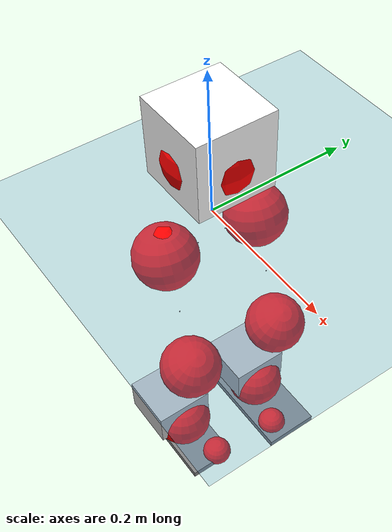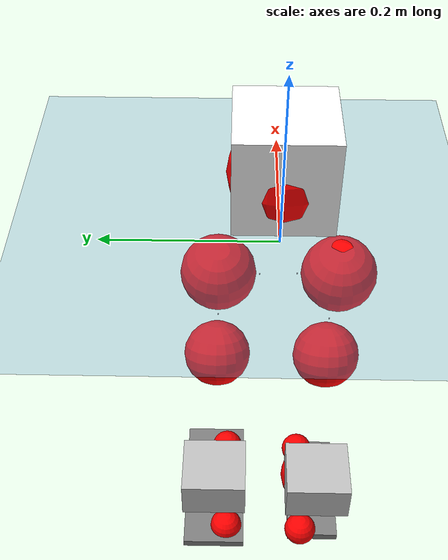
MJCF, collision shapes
<mujoco model="pi_12dof_release_v1">
  <compiler angle="radian" assetdir="assets" balanceinertia="true" inertiafromgeom="false"/>

  <option timestep="0.005" density="1.2" viscosity="2e-05"/>

  <size nkey="1"/>

  <visual>
    <quality shadowsize="8192"/>
    <map shadowclip="0.5"/>
  </visual>

  <default>
    <default class="/">
      <joint armature="0.01" damping="0.01" frictionloss="0.01"/>
      <geom contype="0" conaffinity="0" group="1" solref="-1000 -80"/>
      <site size="0.01 0.005 0.005" group="5"/>
      <general forcelimited="true" biastype="affine" gainprm="20" biasprm="0 -20 -0.5"/>
      <default class="foot">
        <geom size="0.0845 0.036 0.005" type="box" condim="6" group="4" priority="1" friction="0.9 0.2 0.2" solimp="0.015 1 0.005"/>
      </default>
      <default class="reward_collision_sphere">
        <geom group="5" rgba="1 0 0 1"/>
      </default>
    </default>
  </default>

  <asset>
    <texture type="skybox" colorspace="auto" name="//unnamed_texture_0" builtin="gradient" rgb1="0.95 0.95 0.95" rgb2="0.95 0.95 0.95" width="100" height="600"/>
    <texture type="2d" colorspace="auto" name="texplane" builtin="checker" rgb1="0.345 0.575 0.748" rgb2="0.345 0.575 0.748" markrgb="1 1 1" width="512" height="512"/>
    <material name="MatPlane" class="/" texture="texplane" texuniform="true" texrepeat="2 2" specular="0.9"/>
    <mesh name="baselink_1" class="/" file="baselink_1.STL"/>
    <mesh name="r_hip_pitch_link" class="/" file="r_hip_pitch_link.STL"/>
    <mesh name="r_hip_roll_link" class="/" file="r_hip_roll_link.STL"/>
    <mesh name="r_thigh_link" class="/" file="r_thigh_link.STL"/>
    <mesh name="r_calf_link" class="/" file="r_calf_link.STL"/>
    <mesh name="r_ankle_pitch_link" class="/" file="r_ankle_pitch_link.STL"/>
    <mesh name="r_ankle_roll_link" class="/" file="r_ankle_roll_link.STL"/>
    <mesh name="l_hip_pitch_link" class="/" file="l_hip_pitch_link.STL"/>
    <mesh name="l_hip_roll_link" class="/" file="l_hip_roll_link.STL"/>
    <mesh name="l_thigh_link" class="/" file="l_thigh_link.STL"/>
    <mesh name="l_calf_link" class="/" file="l_calf_link.STL"/>
    <mesh name="l_ankle_pitch_link" class="/" file="l_ankle_pitch_link.STL"/>
    <mesh name="l_ankle_roll_link" class="/" file="l_ankle_roll_link.STL"/>
  </asset>

  <worldbody>
    <geom name="floor" class="/" size="100 100 0.125" type="plane" group="0" material="MatPlane"/>
    <light name="toplight_shadow" class="/" pos="0 0 5" dir="0.0990148 0.0990148 -0.990148" type="directional" ambient="0.04 0.04 0.04" diffuse="0.55 0.55 0.55" specular="0.12 0.12 0.12"/>
    <light name="toplight_fill" class="/" pos="0 0 5" dir="0.0990148 0.0990148 -0.990148" type="directional" castshadow="false" ambient="0.04 0.04 0.04" diffuse="0.3 0.3 0.3" specular="0.08 0.08 0.08"/>
    <body name="trunk" pos="-0.000252188 0.000184117 -0.00191277" quat="1 -0.000166295 0.000190364 0.000415229">
      <inertial pos="0.00194891 -0.000328746 0.0551904" quat="0.695487 0.00983456 0.00857808 0.71842" mass="2.62263" diaginertia="0.0116116 0.00361443 0.0174614"/>
      <joint name="//unnamed_joint_0" type="free"/>
      <geom name="//unnamed_geom_1" class="/" type="mesh" density="0" rgba="1 1 1 1" mesh="baselink_1"/>
      <geom name="//unnamed_geom_2" class="/" size="0.0536535 0.0536535 0.0536535" pos="0 0 0.107081" type="box" rgba="1 1 1 1"/>
      <geom name="//unnamed_geom_3" class="reward_collision_sphere" size="0.0590189" pos="0 0 0.0936962"/>
      <site name="imu" class="/" pos="0.0128739 -0.0131723 0.0133324" size="0.0107307"/>
      <camera name="track" class="/" pos="0 -1.67943 0" quat="0.707107 0.707107 0 0" mode="trackcom"/>
      <camera name="ego_camera" class="/" pos="0.0780736 0 0.240933" quat="-0.5 -0.5 0.5 0.5"/>
      <body name="r_hip_pitch_link" pos="-0.00112611 -0.0213501 -0.0422614" quat="0.992127 0.000501596 -0.125235 -0.000958435">
        <inertial pos="0.000233482 -0.0471275 -0.00297431" quat="-0.0165912 0.704749 -0.0296881 0.708641" mass="0.432621" diaginertia="0.00012864 3.84346e-05 0.000357842"/>
        <joint name="r_hip_pitch_joint" class="/" pos="0 0 0" axis="0.0003689 -0.999986 0.00519207" stiffness="0.00525842" range="-1.75936 1.20674" armature="0.00936659" damping="0.00289518" frictionloss="0.00986135"/>
        <geom name="//unnamed_geom_4" class="/" type="mesh" density="0" rgba="0.75294 0.75294 0.75294 1" mesh="r_hip_pitch_link"/>
        <geom name="//unnamed_geom_5" class="/" size="0.000536535 0.000536535 0.000536535" type="box" rgba="0.75294 0.75294 0.75294 1"/>
        <body name="r_hip_roll_link" pos="-0.00160643 -0.0468817 0.00290947" quat="1 -9.07363e-05 0.000126538 9.64195e-05">
          <inertial pos="-0.00165908 0.00108985 -0.0840916" quat="0.703893 -0.0824483 -0.084488 0.700427" mass="0.489699" diaginertia="0.000405326 0.000117651 0.000556648"/>
          <joint name="r_hip_roll_joint" class="/" pos="0 0 0" axis="-0.999981 0.00613708 0.000429456" range="-0.120936 0.50202" armature="0.0102646" damping="0.030549" frictionloss="0.0121159"/>
          <geom name="//unnamed_geom_6" class="/" type="mesh" density="0" rgba="0.75294 0.75294 0.75294 1" mesh="r_hip_roll_link"/>
          <geom name="//unnamed_geom_7" class="/" size="0.000536535 0.000536535 0.000536535" type="box" rgba="0.75294 0.75294 0.75294 1"/>
          <geom name="//unnamed_geom_8" class="reward_collision_sphere" size="0.0429228"/>
          <body name="r_thigh_link" pos="-0.00297585 0.00228324 -0.091345" quat="1 6.91954e-08 -1.23306e-05 -1.74805e-05">
            <inertial pos="0.000983748 0.000686668 -0.0623507" quat="0.737313 0.675551 -0.000625627 -0.00100039" mass="0.131833" diaginertia="0.000152411 4.00239e-05 0.000241816"/>
            <joint name="r_thigh_joint" class="/" pos="0 0 0" axis="0.000444318 -0.00309144 -0.999995" stiffness="0.000941452" range="-0.293141 0.56055" armature="0.0112553" damping="0.00878898" frictionloss="0.0103136"/>
            <geom name="//unnamed_geom_9" class="/" type="mesh" density="0" rgba="0.75294 0.75294 0.75294 1" mesh="r_thigh_link"/>
            <geom name="//unnamed_geom_10" class="/" size="0.000536535 0.000536535 0.000536535" type="box" rgba="0.75294 0.75294 0.75294 1"/>
            <body name="r_calf_link" pos="0.00242354 -0.00469183 -0.0937668" quat="0.947829 3.01745e-07 0.31878 -7.3146e-05">
              <inertial pos="0.000797778 0.000731817 -0.0947323" quat="0.999987 -0.00212343 0.000462695 0.00462878" mass="1.03168" diaginertia="0.00432109 0.00140634 0.000749137"/>
              <joint name="r_calf_joint" class="/" pos="0 0 0" axis="-0.00272647 -0.999992 0.00288305" stiffness="0.00254182" range="-1.70572 0.657298" armature="0.0109198" damping="0.00695756" frictionloss="0.00952704"/>
              <geom name="//unnamed_geom_11" class="/" type="mesh" density="0" rgba="0.75294 0.75294 0.75294 1" mesh="r_calf_link"/>
              <geom name="//unnamed_geom_12" class="/" size="0.000536535 0.000536535 0.000536535" type="box" rgba="0.75294 0.75294 0.75294 1"/>
              <geom name="//unnamed_geom_13" class="reward_collision_sphere" size="0.0429228"/>
              <body name="r_ankle_pitch_link" pos="-0.00113193 0.00271718 -0.187605" quat="0.980169 -0.000939519 -0.198161 0.00026184">
                <inertial pos="0.00465667 0.00235394 -0.000191334" quat="0.00225495 0.707015 -0.00213852 0.707192" mass="0.206336" diaginertia="0.000370104 8.78678e-05 0.00051442"/>
                <joint name="r_ankle_pitch_joint" class="/" pos="0 0 0" axis="0.00826369 -0.999919 -0.00973018" range="-1.34237 0.555712" armature="0.0107144" damping="0.00911161" frictionloss="0.0111724"/>
                <geom name="//unnamed_geom_14" class="/" type="mesh" density="0" rgba="0.75294 0.75294 0.75294 1" mesh="r_ankle_pitch_link"/>
                <geom name="//unnamed_geom_15" class="/" size="0.0418498 0.0429228 0.0268268" type="box" rgba="0.75294 0.75294 0.75294 1"/>
                <body name="r_ankle_roll_link" pos="0.0778722 0.00501561 0.00230978" quat="1 -0.000273416 0.000418305 0.000122696">
                  <inertial pos="-0.0273913 -0.00164481 -0.0203188" quat="0.55242 0.429935 0.433418 0.567571" mass="0.656133" diaginertia="0.00142812 0.000436176 0.0012328"/>
                  <joint name="r_ankle_roll_joint" class="/" pos="0 0 0" axis="-0.999993 -0.00130869 0.00357066" stiffness="0.00625149" range="-0.144812 0.131761" armature="0.0107664" damping="0.00897347" frictionloss="0.0100367"/>
                  <geom name="//unnamed_geom_16" class="/" type="mesh" density="0" rgba="0.75294 0.75294 0.75294 1" mesh="r_ankle_roll_link"/>
                  <geom name="//unnamed_geom_17" class="/" type="mesh" rgba="0.75294 0.75294 0.75294 1" mesh="r_ankle_roll_link"/>
                  <geom name="right_foot" class="foot" size="0.0812748 0.0338131 0.0052707" pos="-0.0530901 0 -0.0588948"/>
                  <geom name="//unnamed_geom_19" class="reward_collision_sphere" size="0.0429228" pos="-0.0520491 0 -0.0267703"/>
                  <geom name="//unnamed_geom_20" class="reward_collision_sphere" size="0.0214614" pos="0.0156147 0.0167943 -0.0535407"/>
                  <geom name="//unnamed_geom_21" class="reward_collision_sphere" size="0.0214614" pos="-0.124918 0.0167943 -0.0535407"/>
                  <site name="right_foot" class="foot" pos="-0.0530901 0 -0.0588948" size="0.0107307"/>
                </body>
              </body>
            </body>
          </body>
        </body>
      </body>
      <body name="l_hip_pitch_link" pos="-0.00205261 0.0206961 -0.0428689" quat="0.992227 -0.000270883 -0.124442 -0.000318888">
        <inertial pos="-0.00185876 0.0446572 0.00122309" quat="-0.0382296 0.71271 0.0306941 0.699744" mass="0.493332" diaginertia="0.000162255 4.52121e-05 0.000418726"/>
        <joint name="l_hip_pitch_joint" class="/" pos="0 0 0" axis="0.00199948 0.999997 -0.00110752" stiffness="0.00136532" range="-1.22298 1.75023" armature="0.012124" damping="0.0245841" frictionloss="0.0102205"/>
        <geom name="//unnamed_geom_22" class="/" type="mesh" density="0" rgba="0.75294 0.75294 0.75294 1" mesh="l_hip_pitch_link"/>
        <geom name="//unnamed_geom_23" class="/" size="0.000536535 0.000536535 0.000536535" type="box" rgba="0.75294 0.75294 0.75294 1"/>
        <body name="l_hip_roll_link" pos="0.00183314 0.0468562 -5.1567e-06" quat="0.999999 0.000400826 0.00124763 0.000581641">
          <inertial pos="-0.00328588 -0.00211019 -0.0814905" quat="0.702304 -0.0858091 -0.0841104 0.701663" mass="0.471769" diaginertia="0.000400511 0.000111814 0.000569632"/>
          <joint name="l_hip_roll_joint" class="/" pos="0 0 0" axis="-0.999919 -0.00133529 -0.0126397" range="-0.530983 0.124052" armature="0.0117085" damping="0.0131249" frictionloss="0.0106672"/>
          <geom name="//unnamed_geom_24" class="/" type="mesh" density="0" rgba="0.75294 0.75294 0.75294 1" mesh="l_hip_roll_link"/>
          <geom name="//unnamed_geom_25" class="/" size="0.000536535 0.000536535 0.000536535" type="box" rgba="0.75294 0.75294 0.75294 1"/>
          <geom name="//unnamed_geom_26" class="reward_collision_sphere" size="0.0429228"/>
          <body name="l_thigh_link" pos="0.0019635 0.00138292 -0.0922782" quat="1 -0.00026521 0.000481071 -6.41474e-05">
            <inertial pos="0.00141361 -0.00420712 -0.065412" quat="0.675321 0.737524 7.54334e-05 6.13784e-05" mass="0.135012" diaginertia="0.000144374 3.85446e-05 0.000236476"/>
            <joint name="l_thigh_joint" class="/" pos="0 0 0" axis="0.00231457 0.00875788 -0.999959" range="-0.559174 0.28424" armature="0.00930524" damping="0.013402" frictionloss="0.00971163"/>
            <geom name="//unnamed_geom_27" class="/" type="mesh" density="0" rgba="0.75294 0.75294 0.75294 1" mesh="l_thigh_link"/>
            <geom name="//unnamed_geom_28" class="/" size="0.000536535 0.000536535 0.000536535" type="box" rgba="0.75294 0.75294 0.75294 1"/>
            <body name="l_calf_link" pos="-0.00095705 0.00205406 -0.0945437" quat="0.947625 -0.0002302 0.319385 -0.000316143">
              <inertial pos="0.00150231 0.00538272 -0.0962921" quat="0.999962 0.000497412 0.00678516 0.00548686" mass="0.951199" diaginertia="0.00430871 0.00137156 0.000726273"/>
              <joint name="l_calf_joint" class="/" pos="0 0 0" axis="3.01202e-05 1 -0.000549213" stiffness="0.0123283" range="-0.614538 1.59731" armature="0.0111941" damping="0.0176282" frictionloss="0.00949015"/>
              <geom name="//unnamed_geom_29" class="/" type="mesh" density="0" rgba="0.75294 0.75294 0.75294 1" mesh="l_calf_link"/>
              <geom name="//unnamed_geom_30" class="/" size="0.000536535 0.000536535 0.000536535" type="box" rgba="0.75294 0.75294 0.75294 1"/>
              <geom name="//unnamed_geom_31" class="reward_collision_sphere" size="0.0429228"/>
              <body name="l_ankle_pitch_link" pos="-0.00100606 0.00327784 -0.185904" quat="0.980097 5.95636e-05 -0.198517 0.000219232">
                <inertial pos="0.00492604 -0.00248208 0.0026249" quat="-0.00858696 0.705703 0.00377663 0.708445" mass="0.220873" diaginertia="0.000387616 9.56588e-05 0.000526777"/>
                <joint name="l_ankle_pitch_joint" class="/" pos="0 0 0" axis="-0.000110315 1 0.000957777" stiffness="0.00218956" range="-0.48323 1.2878" armature="0.0102518" damping="0.0102216" frictionloss="0.00977874"/>
                <geom name="//unnamed_geom_32" class="/" type="mesh" density="0" rgba="0.75294 0.75294 0.75294 1" mesh="l_ankle_pitch_link"/>
                <geom name="//unnamed_geom_33" class="/" size="0.0418498 0.0429228 0.0268268" type="box" rgba="0.75294 0.75294 0.75294 1"/>
                <body name="l_ankle_roll_link" pos="0.0804689 -0.000199891 0.00144343" quat="1 0.000387483 -7.17653e-05 0.000741331">
                  <inertial pos="-0.0224891 0.000596602 -0.0197307" quat="0.561278 0.431433 0.435513 0.556022" mass="0.618084" diaginertia="0.00135762 0.000403571 0.00114988"/>
                  <joint name="l_ankle_roll_joint" class="/" pos="0 0 0" axis="-0.999964 -0.00266846 0.008095" range="-0.160434 0.190963" armature="0.0108659" damping="0.0130654" frictionloss="0.0115586"/>
                  <geom name="//unnamed_geom_34" class="/" type="mesh" density="0" rgba="0.75294 0.75294 0.75294 1" mesh="l_ankle_roll_link"/>
                  <geom name="//unnamed_geom_35" class="/" type="mesh" rgba="0.75294 0.75294 0.75294 1" mesh="l_ankle_roll_link"/>
                  <geom name="left_foot" class="foot" size="0.0998142 0.0410766 0.00515182" pos="-0.0530901 0 -0.0588948"/>
                  <geom name="//unnamed_geom_37" class="reward_collision_sphere" size="0.0429228" pos="-0.0520491 0 -0.0267703"/>
                  <geom name="//unnamed_geom_38" class="reward_collision_sphere" size="0.0214614" pos="0.0156147 -0.0167943 -0.0535407"/>
                  <geom name="//unnamed_geom_39" class="reward_collision_sphere" size="0.0214614" pos="-0.124918 -0.0167943 -0.0535407"/>
                  <site name="left_foot" class="foot" pos="-0.0530901 0 -0.0588948" size="0.0107307"/>
                </body>
              </body>
            </body>
          </body>
        </body>
      </body>
    </body>
  </worldbody>

  <contact>
    <pair class="/" geom1="floor" geom2="right_foot" name="//unnamed_contact_1"/>
    <pair class="/" geom1="floor" geom2="left_foot" name="//unnamed_contact_0"/>
  </contact>

  <actuator>
    <general name="r_hip_pitch_joint" class="/" joint="r_hip_pitch_joint" forcerange="-20.9724 20.9724" gainprm="20.0483" biasprm="0 -20.0483 -0.566014"/>
    <general name="r_hip_roll_joint" class="/" joint="r_hip_roll_joint" forcerange="-22.9126 22.9126" gainprm="20.0483" biasprm="0 -20.0483 -0.566014"/>
    <general name="r_thigh_joint" class="/" joint="r_thigh_joint" forcerange="-20.5342 20.5342" gainprm="20.0483" biasprm="0 -20.0483 -0.566014"/>
    <general name="r_calf_joint" class="/" joint="r_calf_joint" forcerange="-24.6561 24.6561" gainprm="20.0483" biasprm="0 -20.0483 -0.566014"/>
    <general name="r_ankle_pitch_joint" class="/" joint="r_ankle_pitch_joint" forcerange="-24.4831 24.4831" gainprm="20.0483" biasprm="0 -20.0483 -0.566014"/>
    <general name="r_ankle_roll_joint" class="/" joint="r_ankle_roll_joint" forcerange="-22.6505 22.6505" gainprm="20.0483" biasprm="0 -20.0483 -0.566014"/>
    <general name="l_hip_pitch_joint" class="/" joint="l_hip_pitch_joint" forcerange="-20.3275 20.3275" gainprm="20.0483" biasprm="0 -20.0483 -0.566014"/>
    <general name="l_hip_roll_joint" class="/" joint="l_hip_roll_joint" forcerange="-23.7539 23.7539" gainprm="20.0483" biasprm="0 -20.0483 -0.566014"/>
    <general name="l_thigh_joint" class="/" joint="l_thigh_joint" forcerange="-24.2312 24.2312" gainprm="20.0483" biasprm="0 -20.0483 -0.566014"/>
    <general name="l_calf_joint" class="/" joint="l_calf_joint" forcerange="-20.5561 20.5561" gainprm="20.0483" biasprm="0 -20.0483 -0.566014"/>
    <general name="l_ankle_pitch_joint" class="/" joint="l_ankle_pitch_joint" forcerange="-24.673 24.673" gainprm="20.0483" biasprm="0 -20.0483 -0.566014"/>
    <general name="l_ankle_roll_joint" class="/" joint="l_ankle_roll_joint" forcerange="-20.2136 20.2136" gainprm="20.0483" biasprm="0 -20.0483 -0.566014"/>
  </actuator>

  <sensor>
    <gyro site="imu" name="imu_angular_velocity"/>
    <velocimeter site="imu" name="imu_linear_velocity"/>
    <framelinvel objtype="site" objname="left_foot" name="left_foot_global_linear_velocity"/>
    <framelinvel objtype="site" objname="right_foot" name="right_foot_global_linear_velocity"/>
  </sensor>

  <keyframe>
    <key name="home" qpos="0 0 0.291 1 0 0 0 0.4 0 0 -0.8 0.4 0 -0.4 0 0 0.8 -0.4 0"/>
  </keyframe>
</mujoco>
